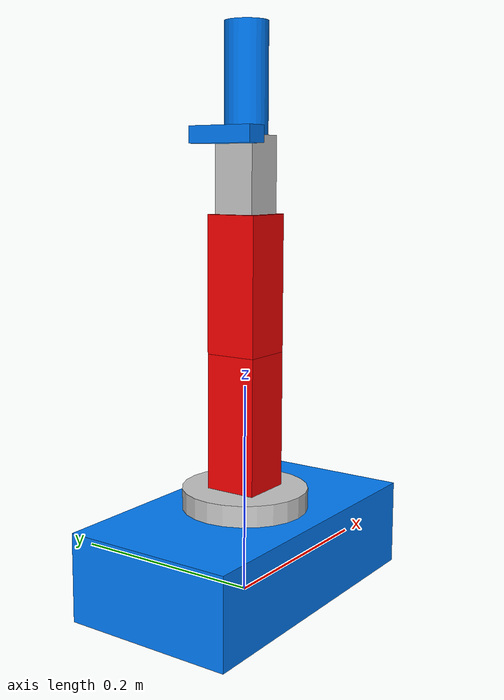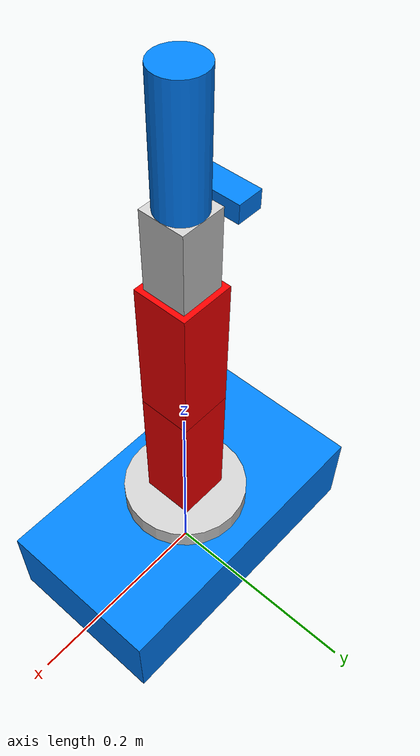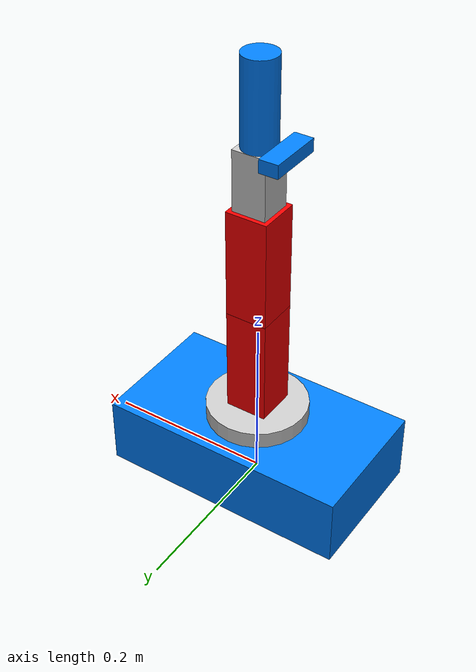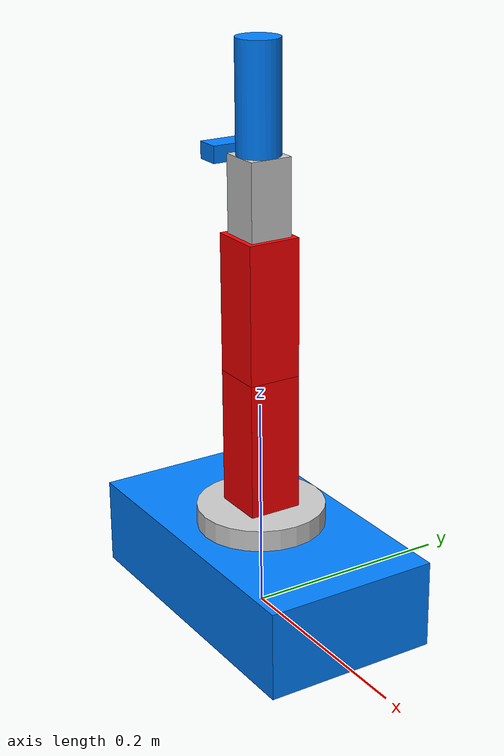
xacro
<?xml version="1.0"?>
<robot xmlns:xacro="http://www.ros.org/wiki/xacro"  name="blueberry_arm">

  <!-- 材料定义 -->
  <material name="blue">
    <color rgba="0 0.5 1 1"/>
  </material>
  <material name="red">
    <color rgba="1 0 0 1"/>
  </material>
  <material name="silver">
    <color rgba="0.8 0.8 0.8 1"/>
  </material>
  <material name="black">
    <color rgba="0.1 0.1 0.1 1"/>
  </material>

<link name="dummy_base">
  <inertial>
    <mass value="0.001" />
    <inertia ixx="0.001" ixy="0" ixz="0" iyy="0.001" iyz="0" izz="0.001" />
  </inertial>
</link>

<joint name="dummy_joint" type="fixed">
  <parent link="dummy_base" />
  <child link="base_link" />
</joint>

  <!-- 基座 -->
  <link name="base_link">
    <visual>
      <geometry>
        <box size="0.3 0.165 0.083"/>  <!-- 长300mm 宽165mm 高103mm -->
      </geometry>
      <origin xyz="0 0 0.0415" rpy="0 0 0"/>  <!-- 中心位置 -->
      <material name="blue"/>
    </visual>
    <collision>
      <geometry>
        <box size="0.3 0.165 0.083"/>
      </geometry>
      <origin xyz="0 0 0.0415" rpy="0 0 0"/>
    </collision>
    <inertial>
      <mass value="5.0"/>
      <inertia ixx="0.05" ixy="0" ixz="0" iyy="0.05" iyz="0" izz="0.05"/>
    </inertial>
  </link>

  <!-- 前左轮 -->

  <!-- 前右轮 -->

  <!-- 后左轮 -->

  <!-- 后右轮 -->

  <!-- 旋转关节 (底座圆盘) -->
  <link name="rotation_base">
    <visual>
      <geometry>
        <cylinder length="0.02" radius="0.06"/>  <!-- 圆盘高度20mm -->
      </geometry>
      <origin xyz="0 0 0.01" rpy="0 0 0"/>
      <material name="silver"/>
    </visual>
    <collision>
      <geometry>
        <cylinder length="0.02" radius="0.06"/>
      </geometry>
      <origin xyz="0 0 0.01" rpy="0 0 0"/>
    </collision>
    <inertial>
      <mass value="0.5"/>
      <inertia ixx="0.0009" ixy="0" ixz="0" iyy="0.0009" iyz="0" izz="0.0018"/>
    </inertial>
  </link>

  <joint name="base_rotation_joint" type="revolute">
    <parent link="base_link"/>
    <child link="rotation_base"/>
    <origin xyz="0 0 0.083" rpy="0 0 0"/>  <!-- 位于基座顶部中心 -->
    <axis xyz="0 0 1"/>  <!-- 绕Z轴旋转 -->
    <limit lower="-3.14" upper="3.14" effort="100" velocity="1.0"/>  <!-- 360°旋转 -->
  </joint>

  <!-- 关节1 (俯仰) -->
  <link name="arm1_link">
    <visual>
      <geometry>
        <box size="0.129 0.05 0.05"/>  <!-- 长129mm -->
      </geometry>
      <origin xyz="0.0645 0 0" rpy="0 0 0"/>  <!-- 中心位置 -->
      <material name="red"/>
    </visual>
    <collision>
      <geometry>
        <box size="0.129 0.05 0.05"/>
      </geometry>
      <origin xyz="0.0645 0 0" rpy="0 0 0"/>
    </collision>
    <inertial>
      <mass value="0.3"/>
      <inertia ixx="0.0001" ixy="0" ixz="0" iyy="0.0005" iyz="0" izz="0.0005"/>
    </inertial>
  </link>

  <joint name="joint1" type="revolute">
    <parent link="rotation_base"/>
    <child link="arm1_link"/>
    <origin xyz="0 0 0.02" rpy="0 -1.57 0"/>  <!-- 位于旋转圆盘顶部 -->
    <axis xyz="0 1 0"/>  <!-- 绕Y轴俯仰 -->
    <limit lower="0" upper="1.57" effort="50" velocity="0.5"/>
  </joint>

  <!-- 关节2 (俯仰) -->
  <link name="arm2_link">
    <visual>
      <geometry>
        <box size="0.129 0.05 0.05"/>  <!-- 长129mm -->
      </geometry>
      <origin xyz="0.0645 0 0" rpy="0 0 0"/>
      <material name="red"/>
    </visual>
    <collision>
      <geometry>
        <box size="0.129 0.05 0.05"/>
      </geometry>
      <origin xyz="0.0645 0 0" rpy="0 0 0"/>
    </collision>
    <inertial>
      <mass value="0.3"/>
      <inertia ixx="0.0001" ixy="0" ixz="0" iyy="0.0005" iyz="0" izz="0.0005"/>
    </inertial>
  </link>

  <joint name="joint2" type="revolute">
    <parent link="arm1_link"/>
    <child link="arm2_link"/>
    <origin xyz="0.129 0 0" rpy="0 0 0"/>  <!-- 连接arm1末端 -->
    <axis xyz="0 1 0"/>  <!-- 绕Y轴俯仰 -->
    <limit lower="0" upper="1.57" effort="50" velocity="0.5"/>
  </joint>

  <!-- 关节3 (俯仰) -->
  <link name="arm3_link">
    <visual>
      <geometry>
        <box size="0.071 0.04 0.04"/>  <!-- 长171mm (含夹爪) -->
      </geometry>
      <origin xyz="0.0355 0 0" rpy="0 0 0"/>
      <material name="silver"/>
    </visual>
    <collision>
      <geometry>
        <box size="0.071 0.04 0.04"/>
      </geometry>
      <origin xyz="0.0355 0 0" rpy="0 0 0"/>
    </collision>
    <inertial>
      <mass value="0.2"/>
      <inertia ixx="0.00005" ixy="0" ixz="0" iyy="0.0002" iyz="0" izz="0.0002"/>
    </inertial>
  </link>

  <joint name="joint3" type="revolute">
    <parent link="arm2_link"/>
    <child link="arm3_link"/>
    <origin xyz="0.129 0 0" rpy="0 0 0"/>  <!-- 连接arm2末端 -->
    <axis xyz="0 1 0"/>  <!-- 绕Y轴俯仰 -->
    <limit lower="0" upper="1.57" effort="30" velocity="0.5"/>
  </joint>

  <!-- 末端执行器 -->
  <link name="end_effector">
    <visual>
      <geometry>
        <cylinder length="0.10" radius="0.02"/>  <!-- 简化表示 -->
      </geometry>
      <origin xyz="0.05 0 0" rpy="0 1.57 0"/>
      <material name="blue"/>
    </visual>
    <collision>
      <geometry>
        <cylinder length="0.10" radius="0.02"/>
      </geometry>
      <origin xyz="0.05 0 0" rpy="0 1.57 0"/>
    </collision>
    <inertial>
      <mass value="0.1"/>
      <inertia ixx="0.00002" ixy="0" ixz="0" iyy="0.00005" iyz="0" izz="0.00005"/>
    </inertial>
  </link>

  <joint name="gripper_joint" type="fixed">
    <parent link="arm3_link"/>
    <child link="end_effector"/>
    <origin xyz="0.071 0 0" rpy="0 0 0"/>  <!-- 位于arm3末端 -->
  </joint>

  <!-- 相机 -->
  <link name="camera_link">
    <visual>
      <geometry>
        <box size="0.0155 0.0653 0.0225"/>
      </geometry>
      <origin xyz="0 0 0" rpy="0 0 0"/>
      <material name="blue"/>
    </visual>
    <collision>
      <geometry>
        <box size="0.0155 0.0653 0.0225"/>
      </geometry>
      <origin xyz="0 0 0" rpy="0 0 0"/>
    </collision>
    <inertial>
      <mass value="0.15"/>
      <inertia ixx="0.00001" ixy="0" ixz="0" iyy="0.00005" iyz="0" izz="0.00005"/>
    </inertial>
  </link>

  <joint name="camera_joint" type="fixed">
    <parent link="arm3_link"/>
    <child link="camera_link"/>
    <origin xyz="0.071 0 0.03125" rpy="0 0 0"/>
  </joint>

  <!-- 光学坐标系定义 -->
  <link name="camera_color_optical_frame"/>

  <!-- 光学坐标系关节（必须按此标准方向） -->
  <joint name="camera_optical_joint" type="fixed">
    <parent link="camera_link"/>
    <child link="camera_color_optical_frame"/>
    <origin rpy="0 -1.57 1.57" xyz="0 0 0"/> <!-- 关键：转换为光学坐标系 -->
  </joint>

  <!-- 添加传输 -->
  <transmission name="tran1">
    <type>transmission_interface/SimpleTransmission</type>
    <joint name="base_rotation_joint">
      <hardwareInterface>hardware_interface/EffortJointInterface</hardwareInterface>
    </joint>
    <actuator name="motor1">
      <hardwareInterface>hardware_interface/EffortJointInterface</hardwareInterface>
      <mechanicalReduction>1</mechanicalReduction>
    </actuator>
  </transmission>

  <!-- 为轮子添加传输 -->
  <transmission name="front_left_wheel_trans">
    <type>transmission_interface/SimpleTransmission</type>
    <joint name="front_left_wheel_joint">
      <hardwareInterface>hardware_interface/VelocityJointInterface</hardwareInterface>
    </joint>
    <actuator name="front_left_wheel_motor">
      <hardwareInterface>hardware_interface/VelocityJointInterface</hardwareInterface>
      <mechanicalReduction>1</mechanicalReduction>
    </actuator>
  </transmission>

  <transmission name="front_right_wheel_trans">
    <type>transmission_interface/SimpleTransmission</type>
    <joint name="front_right_wheel_joint">
      <hardwareInterface>hardware_interface/VelocityJointInterface</hardwareInterface>
    </joint>
    <actuator name="front_right_wheel_motor">
      <hardwareInterface>hardware_interface/VelocityJointInterface</hardwareInterface>
      <mechanicalReduction>1</mechanicalReduction>
    </actuator>
  </transmission>

  <transmission name="rear_left_wheel_trans">
    <type>transmission_interface/SimpleTransmission</type>
    <joint name="rear_left_wheel_joint">
      <hardwareInterface>hardware_interface/VelocityJointInterface</hardwareInterface>
    </joint>
    <actuator name="rear_left_wheel_motor">
      <hardwareInterface>hardware_interface/VelocityJointInterface</hardwareInterface>
      <mechanicalReduction>1</mechanicalReduction>
    </actuator>
  </transmission>

  <transmission name="rear_right_wheel_trans">
    <type>transmission_interface/SimpleTransmission</type>
    <joint name="rear_right_wheel_joint">
      <hardwareInterface>hardware_interface/VelocityJointInterface</hardwareInterface>
    </joint>
    <actuator name="rear_right_wheel_motor">
      <hardwareInterface>hardware_interface/VelocityJointInterface</hardwareInterface>
      <mechanicalReduction>1</mechanicalReduction>
    </actuator>
  </transmission>

</robot>
